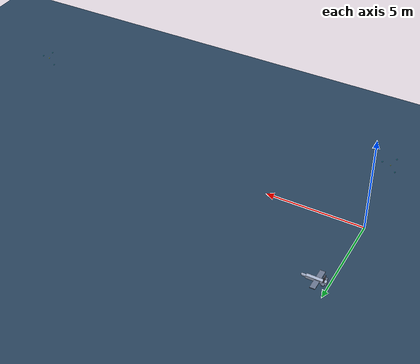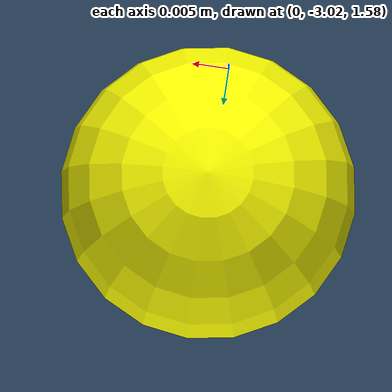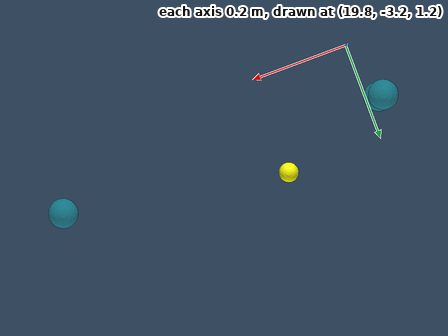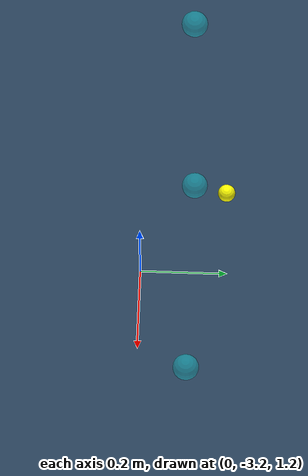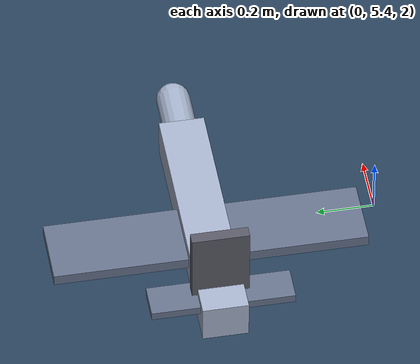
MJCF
<mujoco model="3CamNodeParallel_Proxy">
  <option timestep="0.005"/>

  <visual>
    <headlight ambient="0.85 0.85 0.85" diffuse="0.30 0.30 0.30" specular="0.05 0.05 0.05"/>
    <map force="0.1" zfar="30"/>
    <rgba haze="0.15 0.25 0.35 1"/>
    <global offwidth="2560" offheight="1440" elevation="-20" azimuth="120"/>
    <quality offsamples="0"/>
  </visual>

  <statistic center="0 0 0.7"/>

  <asset>
    <texture type="skybox" builtin="gradient" rgb1=".3 .5 .7" rgb2="0 0 0" width="32" height="512"/>
    <texture name="grid" type="2d" builtin="checker" width="512" height="512" rgb1=".1 .2 .3" rgb2=".2 .3 .4"/>
    <material name="grid" texture="grid" texrepeat="1 1" texuniform="true" reflectance="0" specular="0" shininess="0"/>
    <material name="proxy_body" rgba="0.65 0.70 0.80 1.0"/>
    <material name="proxy_wing" rgba="0.40 0.45 0.55 1.0"/>
    <material name="proxy_tail" rgba="0.35 0.35 0.40 1.0"/>
  </asset>

  <worldbody>
    <geom name="floor" size="0 0 .05" type="plane" material="grid" condim="3"/>
    <light name="top_center" pos="10 6 12" diffuse="0.85 0.85 0.85" specular="0.03 0.03 0.03" castshadow="false"/>
    <light name="front_fill" pos="10 -10 6" diffuse="0.45 0.45 0.45" specular="0.02 0.02 0.02" castshadow="false"/>
    <light name="back_fill" pos="10 22 6" diffuse="0.45 0.45 0.45" specular="0.02 0.02 0.02" castshadow="false"/>
    <light name="left_fill" pos="-8 6 6" diffuse="0.40 0.40 0.40" specular="0.02 0.02 0.02" castshadow="false"/>
    <light name="right_fill" pos="28 6 6" diffuse="0.40 0.40 0.40" specular="0.02 0.02 0.02" castshadow="false"/>

    <body name="node01" pos="0 -3 1.6">
      <site name="node01_origin" pos="0 0 0" size="0.02" rgba="1 1 0 1"/>
      <camera name="node01_cam0" pos="0.45 0 0.0" xyaxes="1 0 0  0 0 1" fovy="60"/>
      <camera name="node01_cam1" pos="-0.225 0 0.389711" xyaxes="1 0 0  0 0 1" fovy="60"/>
      <camera name="node01_cam2" pos="-0.225 0 -0.389711" xyaxes="1 0 0  0 0 1" fovy="60"/>
      <geom name="node01_cam0_marker" type="sphere" pos="0.45 -0.08 0.0" size="0.03" rgba="0 1 1 0.35" contype="0" conaffinity="0"/>
      <geom name="node01_cam1_marker" type="sphere" pos="-0.225 -0.08 0.389711" size="0.03" rgba="0 1 1 0.35" contype="0" conaffinity="0"/>
      <geom name="node01_cam2_marker" type="sphere" pos="-0.225 -0.08 -0.389711" size="0.03" rgba="0 1 1 0.35" contype="0" conaffinity="0"/>
    </body>

    <body name="node02" pos="20 -3 1.6">
      <site name="node02_origin" pos="0 0 0" size="0.02" rgba="1 1 0 1"/>
      <camera name="node02_cam0" pos="0.45 0 0.0" xyaxes="1 0 0  0 0 1" fovy="60"/>
      <camera name="node02_cam1" pos="-0.225 0 0.389711" xyaxes="1 0 0  0 0 1" fovy="60"/>
      <camera name="node02_cam2" pos="-0.225 0 -0.389711" xyaxes="1 0 0  0 0 1" fovy="60"/>
      <geom name="node02_cam0_marker" type="sphere" pos="0.45 -0.08 0.0" size="0.03" rgba="0 1 1 0.35" contype="0" conaffinity="0"/>
      <geom name="node02_cam1_marker" type="sphere" pos="-0.225 -0.08 0.389711" size="0.03" rgba="0 1 1 0.35" contype="0" conaffinity="0"/>
      <geom name="node02_cam2_marker" type="sphere" pos="-0.225 -0.08 -0.389711" size="0.03" rgba="0 1 1 0.35" contype="0" conaffinity="0"/>
    </body>

    <body name="target" pos="0 6 2.0">
      <freejoint/>
      <inertial pos="0 0 0" mass="2" diaginertia="0.2 0.2 0.2"/>

      <geom name="proxy_fuselage" type="box" size="0.45 0.08 0.07" pos="0 0 0" material="proxy_body" contype="1" conaffinity="1"/>
      <geom name="proxy_nose" type="capsule" fromto="0.35 0 0  0.62 0 0" size="0.06" material="proxy_body" contype="1" conaffinity="1"/>
      <geom name="proxy_wing_main" type="box" size="0.12 0.55 0.02" pos="-0.05 0 0.01" material="proxy_wing" contype="1" conaffinity="1"/>
      <geom name="proxy_wing_tail" type="box" size="0.06 0.25 0.015" pos="-0.35 0 0.03" material="proxy_wing" contype="1" conaffinity="1"/>
      <geom name="proxy_fin" type="box" size="0.02 0.10 0.16" pos="-0.33 0 0.15" material="proxy_tail" contype="1" conaffinity="1"/>
    </body>
  </worldbody>
</mujoco>
